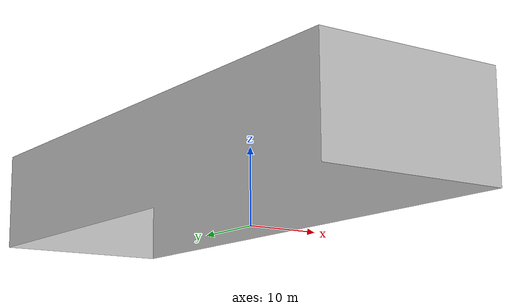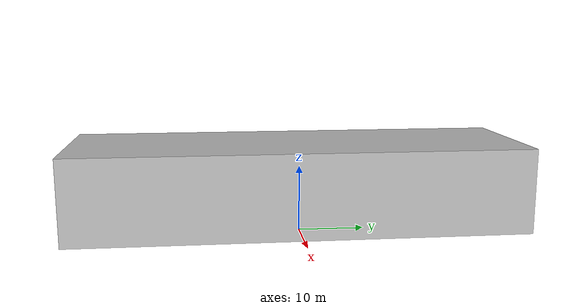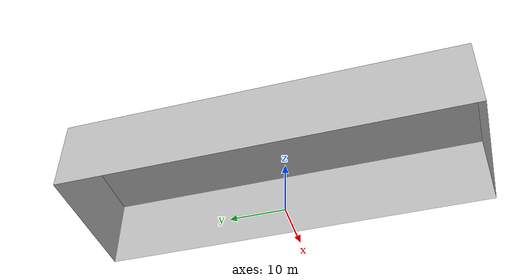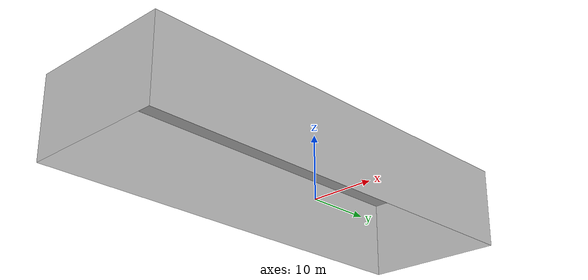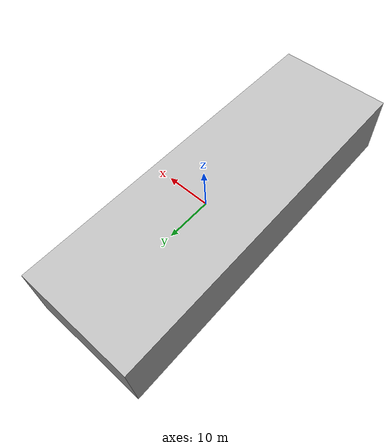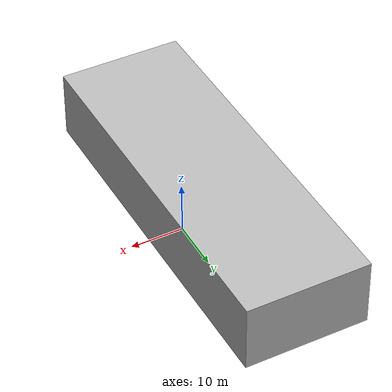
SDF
<?xml version='1.0'?>
<sdf version='1.4'>
  <model name="cyberzoo_outer_walls">
    <static>true</static>
    <pose>0 0 0 0 0 0</pose>

    <link name="cyberzoo_outer_walls">
      <pose>0 0 0 0 0 0</pose>
      <visual name="walls">
        <cast_shadows>false</cast_shadows>
        <geometry>
          <mesh>
            <uri>model://cyberzoo_outer_walls/cyberzoo_outer_walls.dae</uri>
          </mesh>
        </geometry>
      </visual>
    </link>

  </model>
</sdf>
